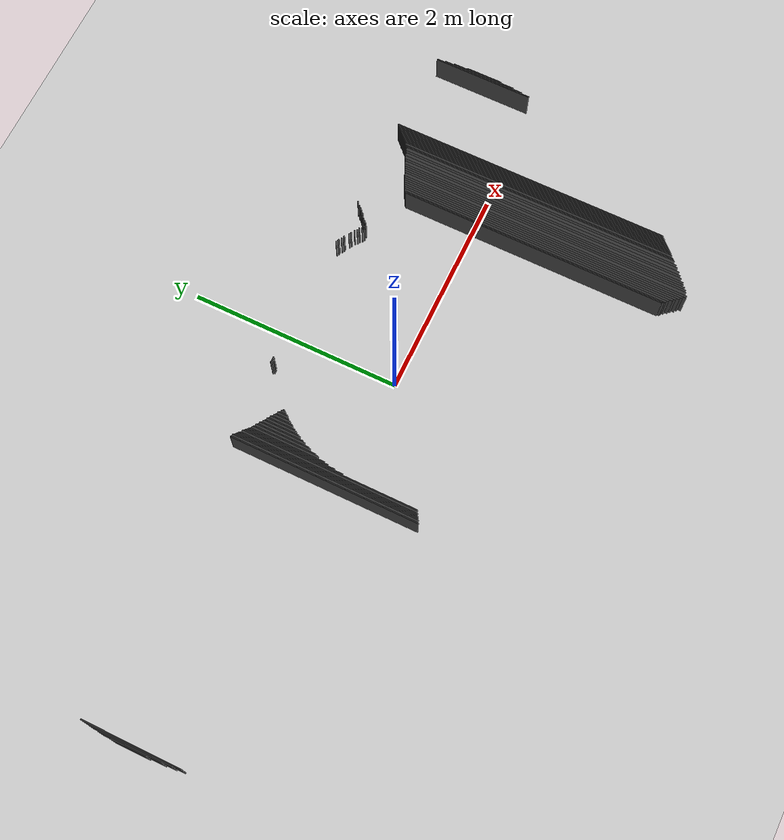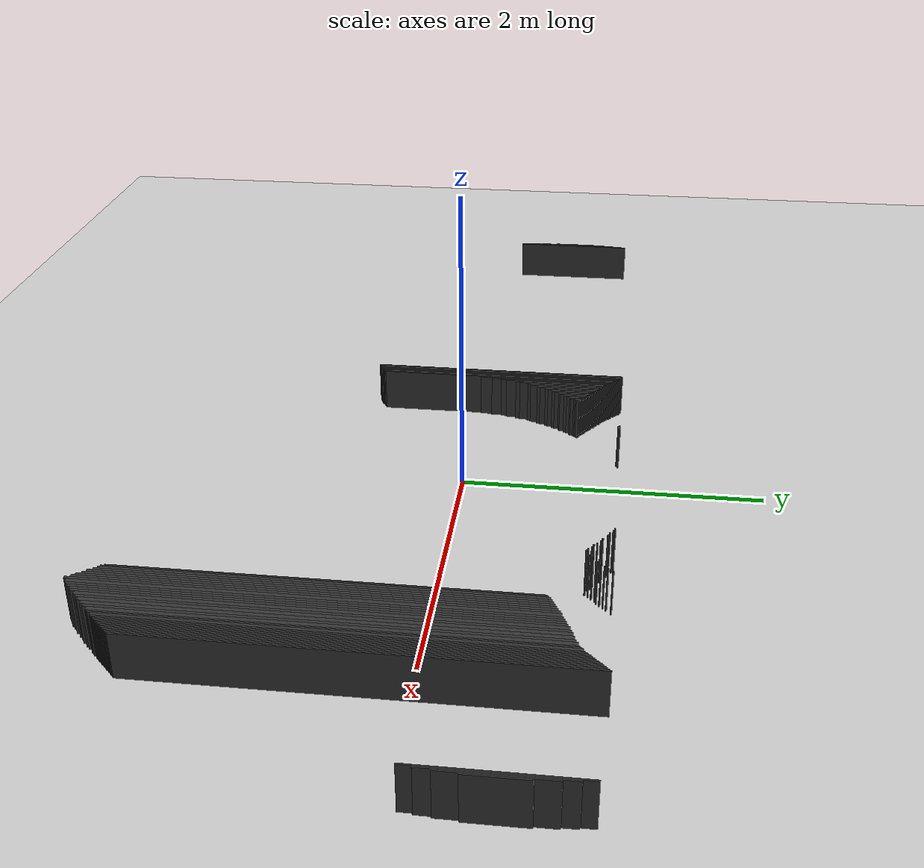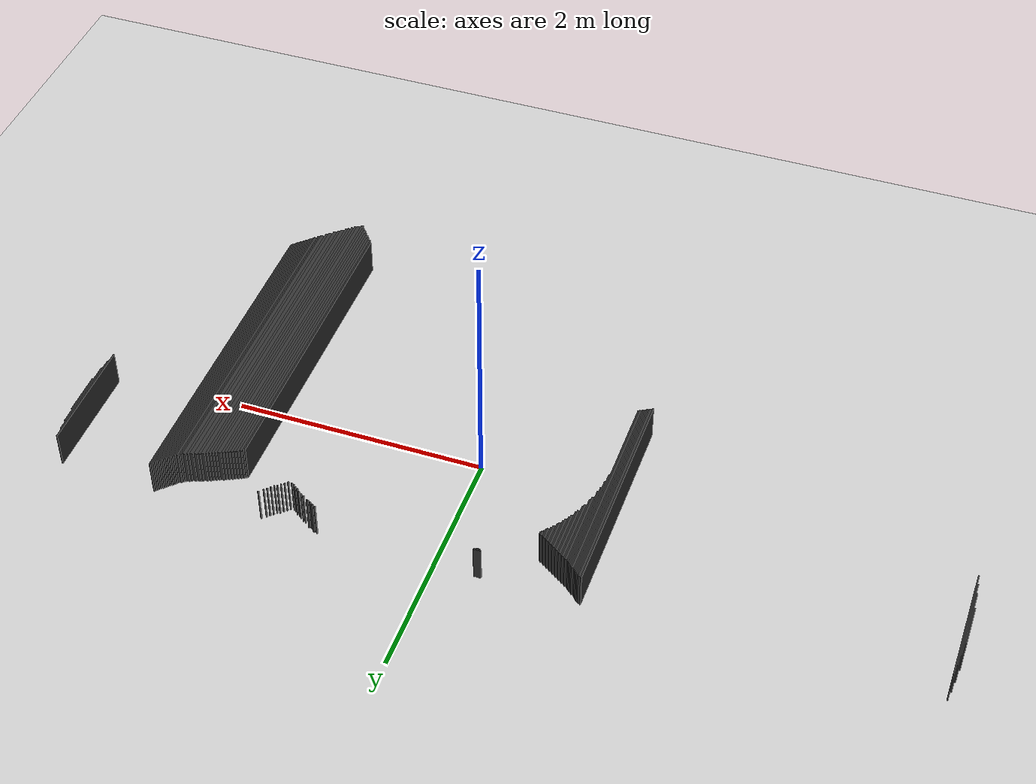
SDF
<sdf version="1.7">
 <world name="mapa_mundo">
  <model name="ground_plane">
   <static>true</static>
   <link name="link">
    <collision name="collision">
     <geometry><plane><normal>0 0 1</normal><size>10 10</size></plane></geometry>
     <surface><friction><ode><mu>100</mu><mu2>50</mu2></ode></friction></surface>
    </collision>
    <visual name="visual">
     <geometry><plane><normal>0 0 1</normal><size>10 10</size></plane></geometry>
     <material>
      <ambient>0.8 0.8 0.8 1</ambient>
      <diffuse>0.8 0.8 0.8 1</diffuse>
      <specular>0.8 0.8 0.8 1</specular>
     </material>
    </visual>
   </link>
  </model>
  <model name="wall_700">
   <static>true</static>
   <link name="link">
    <collision name="collision"><geometry><box><size>0.01 2.66 0.3</size></box></geometry></collision>
    <visual name="visual">
     <geometry><box><size>0.01 2.66 0.3</size></box></geometry>
     <material><ambient>0.2 0.2 0.2 1</ambient><diffuse>0.2 0.2 0.2 1</diffuse></material>
    </visual>
    <pose>2.255 -0.28 0.15 0 0 0</pose>
   </link>
  </model>
  <model name="wall_701">
   <static>true</static>
   <link name="link">
    <collision name="collision"><geometry><box><size>0.01 1.8 0.3</size></box></geometry></collision>
    <visual name="visual">
     <geometry><box><size>0.01 1.8 0.3</size></box></geometry>
     <material><ambient>0.2 0.2 0.2 1</ambient><diffuse>0.2 0.2 0.2 1</diffuse></material>
    </visual>
    <pose>-1.125 0.14 0.15 0 0 0</pose>
   </link>
  </model>
  <model name="wall_702">
   <static>true</static>
   <link name="link">
    <collision name="collision"><geometry><box><size>0.06 0.01 0.3</size></box></geometry></collision>
    <visual name="visual">
     <geometry><box><size>0.06 0.01 0.3</size></box></geometry>
     <material><ambient>0.2 0.2 0.2 1</ambient><diffuse>0.2 0.2 0.2 1</diffuse></material>
    </visual>
    <pose>-0.34 1.035 0.15 0 0 0</pose>
   </link>
  </model>
  <model name="wall_703">
   <static>true</static>
   <link name="link">
    <collision name="collision"><geometry><box><size>0.01 0.01 0.3</size></box></geometry></collision>
    <visual name="visual">
     <geometry><box><size>0.01 0.01 0.3</size></box></geometry>
     <material><ambient>0.2 0.2 0.2 1</ambient><diffuse>0.2 0.2 0.2 1</diffuse></material>
    </visual>
    <pose>0.925 1.035 0.15 0 0 0</pose>
   </link>
  </model>
  <model name="wall_704">
   <static>true</static>
   <link name="link">
    <collision name="collision"><geometry><box><size>0.01 0.01 0.3</size></box></geometry></collision>
    <visual name="visual">
     <geometry><box><size>0.01 0.01 0.3</size></box></geometry>
     <material><ambient>0.2 0.2 0.2 1</ambient><diffuse>0.2 0.2 0.2 1</diffuse></material>
    </visual>
    <pose>1.375 1.035 0.15 0 0 0</pose>
   </link>
  </model>
  <model name="wall_705">
   <static>true</static>
   <link name="link">
    <collision name="collision"><geometry><box><size>0.01 2.66 0.3</size></box></geometry></collision>
    <visual name="visual">
     <geometry><box><size>0.01 2.66 0.3</size></box></geometry>
     <material><ambient>0.2 0.2 0.2 1</ambient><diffuse>0.2 0.2 0.2 1</diffuse></material>
    </visual>
    <pose>2.245 -0.29 0.15 0 0 0</pose>
   </link>
  </model>
  <model name="wall_706">
   <static>true</static>
   <link name="link">
    <collision name="collision"><geometry><box><size>0.02 1.78 0.3</size></box></geometry></collision>
    <visual name="visual">
     <geometry><box><size>0.02 1.78 0.3</size></box></geometry>
     <material><ambient>0.2 0.2 0.2 1</ambient><diffuse>0.2 0.2 0.2 1</diffuse></material>
    </visual>
    <pose>-1.11 0.14 0.15 0 0 0</pose>
   </link>
  </model>
  <model name="wall_707">
   <static>true</static>
   <link name="link">
    <collision name="collision"><geometry><box><size>0.03 0.01 0.3</size></box></geometry></collision>
    <visual name="visual">
     <geometry><box><size>0.03 0.01 0.3</size></box></geometry>
     <material><ambient>0.2 0.2 0.2 1</ambient><diffuse>0.2 0.2 0.2 1</diffuse></material>
    </visual>
    <pose>-0.34500000000000003 1.025 0.15 0 0 0</pose>
   </link>
  </model>
  <model name="wall_708">
   <static>true</static>
   <link name="link">
    <collision name="collision"><geometry><box><size>0.02 0.01 0.3</size></box></geometry></collision>
    <visual name="visual">
     <geometry><box><size>0.02 0.01 0.3</size></box></geometry>
     <material><ambient>0.2 0.2 0.2 1</ambient><diffuse>0.2 0.2 0.2 1</diffuse></material>
    </visual>
    <pose>0.9500000000000001 1.025 0.15 0 0 0</pose>
   </link>
  </model>
  <model name="wall_709">
   <static>true</static>
   <link name="link">
    <collision name="collision"><geometry><box><size>0.01 2.66 0.3</size></box></geometry></collision>
    <visual name="visual">
     <geometry><box><size>0.01 2.66 0.3</size></box></geometry>
     <material><ambient>0.2 0.2 0.2 1</ambient><diffuse>0.2 0.2 0.2 1</diffuse></material>
    </visual>
    <pose>2.235 -0.3 0.15 0 0 0</pose>
   </link>
  </model>
  <model name="wall_710">
   <static>true</static>
   <link name="link">
    <collision name="collision"><geometry><box><size>0.01 1.76 0.3</size></box></geometry></collision>
    <visual name="visual">
     <geometry><box><size>0.01 1.76 0.3</size></box></geometry>
     <material><ambient>0.2 0.2 0.2 1</ambient><diffuse>0.2 0.2 0.2 1</diffuse></material>
    </visual>
    <pose>-1.095 0.14 0.15 0 0 0</pose>
   </link>
  </model>
  <model name="wall_711">
   <static>true</static>
   <link name="link">
    <collision name="collision"><geometry><box><size>0.01 2.66 0.3</size></box></geometry></collision>
    <visual name="visual">
     <geometry><box><size>0.01 2.66 0.3</size></box></geometry>
     <material><ambient>0.2 0.2 0.2 1</ambient><diffuse>0.2 0.2 0.2 1</diffuse></material>
    </visual>
    <pose>2.225 -0.31 0.15 0 0 0</pose>
   </link>
  </model>
  <model name="wall_712">
   <static>true</static>
   <link name="link">
    <collision name="collision">
     <geometry><box><size>0.01 0.9500000000000001 0.3</size></box></geometry>
    </collision>
    <visual name="visual">
     <geometry><box><size>0.01 0.9500000000000001 0.3</size></box></geometry>
     <material><ambient>0.2 0.2 0.2 1</ambient><diffuse>0.2 0.2 0.2 1</diffuse></material>
    </visual>
    <pose>3.045 0.545 0.15 0 0 0</pose>
   </link>
  </model>
  <model name="wall_713">
   <static>true</static>
   <link name="link">
    <collision name="collision"><geometry><box><size>0.01 0.93 0.3</size></box></geometry></collision>
    <visual name="visual">
     <geometry><box><size>0.01 0.93 0.3</size></box></geometry>
     <material><ambient>0.2 0.2 0.2 1</ambient><diffuse>0.2 0.2 0.2 1</diffuse></material>
    </visual>
    <pose>-3.785 0.545 0.15 0 0 0</pose>
   </link>
  </model>
  <model name="wall_714">
   <static>true</static>
   <link name="link">
    <collision name="collision"><geometry><box><size>0.01 1.75 0.3</size></box></geometry></collision>
    <visual name="visual">
     <geometry><box><size>0.01 1.75 0.3</size></box></geometry>
     <material><ambient>0.2 0.2 0.2 1</ambient><diffuse>0.2 0.2 0.2 1</diffuse></material>
    </visual>
    <pose>-1.085 0.135 0.15 0 0 0</pose>
   </link>
  </model>
  <model name="wall_715">
   <static>true</static>
   <link name="link">
    <collision name="collision"><geometry><box><size>0.01 0.01 0.3</size></box></geometry></collision>
    <visual name="visual">
     <geometry><box><size>0.01 0.01 0.3</size></box></geometry>
     <material><ambient>0.2 0.2 0.2 1</ambient><diffuse>0.2 0.2 0.2 1</diffuse></material>
    </visual>
    <pose>0.975 1.0050000000000001 0.15 0 0 0</pose>
   </link>
  </model>
  <model name="wall_716">
   <static>true</static>
   <link name="link">
    <collision name="collision"><geometry><box><size>0.01 0.01 0.3</size></box></geometry></collision>
    <visual name="visual">
     <geometry><box><size>0.01 0.01 0.3</size></box></geometry>
     <material><ambient>0.2 0.2 0.2 1</ambient><diffuse>0.2 0.2 0.2 1</diffuse></material>
    </visual>
    <pose>1.345 1.0050000000000001 0.15 0 0 0</pose>
   </link>
  </model>
  <model name="wall_717">
   <static>true</static>
   <link name="link">
    <collision name="collision"><geometry><box><size>0.01 2.66 0.3</size></box></geometry></collision>
    <visual name="visual">
     <geometry><box><size>0.01 2.66 0.3</size></box></geometry>
     <material><ambient>0.2 0.2 0.2 1</ambient><diffuse>0.2 0.2 0.2 1</diffuse></material>
    </visual>
    <pose>2.215 -0.32 0.15 0 0 0</pose>
   </link>
  </model>
  <model name="wall_718">
   <static>true</static>
   <link name="link">
    <collision name="collision"><geometry><box><size>0.01 1.73 0.3</size></box></geometry></collision>
    <visual name="visual">
     <geometry><box><size>0.01 1.73 0.3</size></box></geometry>
     <material><ambient>0.2 0.2 0.2 1</ambient><diffuse>0.2 0.2 0.2 1</diffuse></material>
    </visual>
    <pose>-1.075 0.135 0.15 0 0 0</pose>
   </link>
  </model>
  <model name="wall_719">
   <static>true</static>
   <link name="link">
    <collision name="collision"><geometry><box><size>0.02 0.01 0.3</size></box></geometry></collision>
    <visual name="visual">
     <geometry><box><size>0.02 0.01 0.3</size></box></geometry>
     <material><ambient>0.2 0.2 0.2 1</ambient><diffuse>0.2 0.2 0.2 1</diffuse></material>
    </visual>
    <pose>1.0 0.995 0.15 0 0 0</pose>
   </link>
  </model>
  <model name="wall_720">
   <static>true</static>
   <link name="link">
    <collision name="collision"><geometry><box><size>0.01 2.66 0.3</size></box></geometry></collision>
    <visual name="visual">
     <geometry><box><size>0.01 2.66 0.3</size></box></geometry>
     <material><ambient>0.2 0.2 0.2 1</ambient><diffuse>0.2 0.2 0.2 1</diffuse></material>
    </visual>
    <pose>2.205 -0.33 0.15 0 0 0</pose>
   </link>
  </model>
  <model name="wall_721">
   <static>true</static>
   <link name="link">
    <collision name="collision"><geometry><box><size>0.01 1.71 0.3</size></box></geometry></collision>
    <visual name="visual">
     <geometry><box><size>0.01 1.71 0.3</size></box></geometry>
     <material><ambient>0.2 0.2 0.2 1</ambient><diffuse>0.2 0.2 0.2 1</diffuse></material>
    </visual>
    <pose>-1.065 0.135 0.15 0 0 0</pose>
   </link>
  </model>
  <model name="wall_722">
   <static>true</static>
   <link name="link">
    <collision name="collision"><geometry><box><size>0.01 0.01 0.3</size></box></geometry></collision>
    <visual name="visual">
     <geometry><box><size>0.01 0.01 0.3</size></box></geometry>
     <material><ambient>0.2 0.2 0.2 1</ambient><diffuse>0.2 0.2 0.2 1</diffuse></material>
    </visual>
    <pose>1.325 0.985 0.15 0 0 0</pose>
   </link>
  </model>
  <model name="wall_723">
   <static>true</static>
   <link name="link">
    <collision name="collision"><geometry><box><size>0.01 2.66 0.3</size></box></geometry></collision>
    <visual name="visual">
     <geometry><box><size>0.01 2.66 0.3</size></box></geometry>
     <material><ambient>0.2 0.2 0.2 1</ambient><diffuse>0.2 0.2 0.2 1</diffuse></material>
    </visual>
    <pose>2.195 -0.34 0.15 0 0 0</pose>
   </link>
  </model>
  <model name="wall_724">
   <static>true</static>
   <link name="link">
    <collision name="collision"><geometry><box><size>0.01 1.7 0.3</size></box></geometry></collision>
    <visual name="visual">
     <geometry><box><size>0.01 1.7 0.3</size></box></geometry>
     <material><ambient>0.2 0.2 0.2 1</ambient><diffuse>0.2 0.2 0.2 1</diffuse></material>
    </visual>
    <pose>-1.055 0.13 0.15 0 0 0</pose>
   </link>
  </model>
  <model name="wall_725">
   <static>true</static>
   <link name="link">
    <collision name="collision"><geometry><box><size>0.01 2.66 0.3</size></box></geometry></collision>
    <visual name="visual">
     <geometry><box><size>0.01 2.66 0.3</size></box></geometry>
     <material><ambient>0.2 0.2 0.2 1</ambient><diffuse>0.2 0.2 0.2 1</diffuse></material>
    </visual>
    <pose>2.185 -0.35000000000000003 0.15 0 0 0</pose>
   </link>
  </model>
  <model name="wall_726">
   <static>true</static>
   <link name="link">
    <collision name="collision"><geometry><box><size>0.02 1.68 0.3</size></box></geometry></collision>
    <visual name="visual">
     <geometry><box><size>0.02 1.68 0.3</size></box></geometry>
     <material><ambient>0.2 0.2 0.2 1</ambient><diffuse>0.2 0.2 0.2 1</diffuse></material>
    </visual>
    <pose>-1.04 0.13 0.15 0 0 0</pose>
   </link>
  </model>
  <model name="wall_727">
   <static>true</static>
   <link name="link">
    <collision name="collision"><geometry><box><size>0.01 0.01 0.3</size></box></geometry></collision>
    <visual name="visual">
     <geometry><box><size>0.01 0.01 0.3</size></box></geometry>
     <material><ambient>0.2 0.2 0.2 1</ambient><diffuse>0.2 0.2 0.2 1</diffuse></material>
    </visual>
    <pose>1.045 0.965 0.15 0 0 0</pose>
   </link>
  </model>
  <model name="wall_728">
   <static>true</static>
   <link name="link">
    <collision name="collision"><geometry><box><size>0.01 0.01 0.3</size></box></geometry></collision>
    <visual name="visual">
     <geometry><box><size>0.01 0.01 0.3</size></box></geometry>
     <material><ambient>0.2 0.2 0.2 1</ambient><diffuse>0.2 0.2 0.2 1</diffuse></material>
    </visual>
    <pose>1.305 0.965 0.15 0 0 0</pose>
   </link>
  </model>
  <model name="wall_729">
   <static>true</static>
   <link name="link">
    <collision name="collision"><geometry><box><size>0.01 2.66 0.3</size></box></geometry></collision>
    <visual name="visual">
     <geometry><box><size>0.01 2.66 0.3</size></box></geometry>
     <material><ambient>0.2 0.2 0.2 1</ambient><diffuse>0.2 0.2 0.2 1</diffuse></material>
    </visual>
    <pose>2.1750000000000003 -0.36 0.15 0 0 0</pose>
   </link>
  </model>
  <model name="wall_730">
   <static>true</static>
   <link name="link">
    <collision name="collision">
     <geometry><box><size>0.01 1.6600000000000001 0.3</size></box></geometry>
    </collision>
    <visual name="visual">
     <geometry><box><size>0.01 1.6600000000000001 0.3</size></box></geometry>
     <material><ambient>0.2 0.2 0.2 1</ambient><diffuse>0.2 0.2 0.2 1</diffuse></material>
    </visual>
    <pose>-1.025 0.13 0.15 0 0 0</pose>
   </link>
  </model>
  <model name="wall_731">
   <static>true</static>
   <link name="link">
    <collision name="collision"><geometry><box><size>0.01 0.01 0.3</size></box></geometry></collision>
    <visual name="visual">
     <geometry><box><size>0.01 0.01 0.3</size></box></geometry>
     <material><ambient>0.2 0.2 0.2 1</ambient><diffuse>0.2 0.2 0.2 1</diffuse></material>
    </visual>
    <pose>1.065 0.9550000000000001 0.15 0 0 0</pose>
   </link>
  </model>
  <model name="wall_732">
   <static>true</static>
   <link name="link">
    <collision name="collision"><geometry><box><size>0.01 2.66 0.3</size></box></geometry></collision>
    <visual name="visual">
     <geometry><box><size>0.01 2.66 0.3</size></box></geometry>
     <material><ambient>0.2 0.2 0.2 1</ambient><diffuse>0.2 0.2 0.2 1</diffuse></material>
    </visual>
    <pose>2.165 -0.37 0.15 0 0 0</pose>
   </link>
  </model>
  <model name="wall_733">
   <static>true</static>
   <link name="link">
    <collision name="collision">
     <geometry><box><size>0.01 0.9400000000000001 0.3</size></box></geometry>
    </collision>
    <visual name="visual">
     <geometry><box><size>0.01 0.9400000000000001 0.3</size></box></geometry>
     <material><ambient>0.2 0.2 0.2 1</ambient><diffuse>0.2 0.2 0.2 1</diffuse></material>
    </visual>
    <pose>-1.0150000000000001 0.48 0.15 0 0 0</pose>
   </link>
  </model>
  <model name="wall_734">
   <static>true</static>
   <link name="link">
    <collision name="collision"><geometry><box><size>0.01 0.01 0.3</size></box></geometry></collision>
    <visual name="visual">
     <geometry><box><size>0.01 0.01 0.3</size></box></geometry>
     <material><ambient>0.2 0.2 0.2 1</ambient><diffuse>0.2 0.2 0.2 1</diffuse></material>
    </visual>
    <pose>1.285 0.9450000000000001 0.15 0 0 0</pose>
   </link>
  </model>
  <model name="wall_735">
   <static>true</static>
   <link name="link">
    <collision name="collision"><geometry><box><size>0.01 2.66 0.3</size></box></geometry></collision>
    <visual name="visual">
     <geometry><box><size>0.01 2.66 0.3</size></box></geometry>
     <material><ambient>0.2 0.2 0.2 1</ambient><diffuse>0.2 0.2 0.2 1</diffuse></material>
    </visual>
    <pose>2.1550000000000002 -0.38 0.15 0 0 0</pose>
   </link>
  </model>
  <model name="wall_736">
   <static>true</static>
   <link name="link">
    <collision name="collision"><geometry><box><size>0.01 0.85 0.3</size></box></geometry></collision>
    <visual name="visual">
     <geometry><box><size>0.01 0.85 0.3</size></box></geometry>
     <material><ambient>0.2 0.2 0.2 1</ambient><diffuse>0.2 0.2 0.2 1</diffuse></material>
    </visual>
    <pose>-1.0050000000000001 0.515 0.15 0 0 0</pose>
   </link>
  </model>
  <model name="wall_737">
   <static>true</static>
   <link name="link">
    <collision name="collision"><geometry><box><size>0.01 0.01 0.3</size></box></geometry></collision>
    <visual name="visual">
     <geometry><box><size>0.01 0.01 0.3</size></box></geometry>
     <material><ambient>0.2 0.2 0.2 1</ambient><diffuse>0.2 0.2 0.2 1</diffuse></material>
    </visual>
    <pose>1.095 0.935 0.15 0 0 0</pose>
   </link>
  </model>
  <model name="wall_738">
   <static>true</static>
   <link name="link">
    <collision name="collision"><geometry><box><size>0.01 0.01 0.3</size></box></geometry></collision>
    <visual name="visual">
     <geometry><box><size>0.01 0.01 0.3</size></box></geometry>
     <material><ambient>0.2 0.2 0.2 1</ambient><diffuse>0.2 0.2 0.2 1</diffuse></material>
    </visual>
    <pose>1.2650000000000001 0.935 0.15 0 0 0</pose>
   </link>
  </model>
  <model name="wall_739">
   <static>true</static>
   <link name="link">
    <collision name="collision"><geometry><box><size>0.01 2.66 0.3</size></box></geometry></collision>
    <visual name="visual">
     <geometry><box><size>0.01 2.66 0.3</size></box></geometry>
     <material><ambient>0.2 0.2 0.2 1</ambient><diffuse>0.2 0.2 0.2 1</diffuse></material>
    </visual>
    <pose>2.145 -0.39 0.15 0 0 0</pose>
   </link>
  </model>
  <model name="wall_740">
   <static>true</static>
   <link name="link">
    <collision name="collision"><geometry><box><size>0.01 0.79 0.3</size></box></geometry></collision>
    <visual name="visual">
     <geometry><box><size>0.01 0.79 0.3</size></box></geometry>
     <material><ambient>0.2 0.2 0.2 1</ambient><diffuse>0.2 0.2 0.2 1</diffuse></material>
    </visual>
    <pose>3.055 0.545 0.15 0 0 0</pose>
   </link>
  </model>
  <model name="wall_741">
   <static>true</static>
   <link name="link">
    <collision name="collision"><geometry><box><size>0.01 0.77 0.3</size></box></geometry></collision>
    <visual name="visual">
     <geometry><box><size>0.01 0.77 0.3</size></box></geometry>
     <material><ambient>0.2 0.2 0.2 1</ambient><diffuse>0.2 0.2 0.2 1</diffuse></material>
    </visual>
    <pose>-3.795 0.545 0.15 0 0 0</pose>
   </link>
  </model>
  <model name="wall_742">
   <static>true</static>
   <link name="link">
    <collision name="collision"><geometry><box><size>0.01 0.77 0.3</size></box></geometry></collision>
    <visual name="visual">
     <geometry><box><size>0.01 0.77 0.3</size></box></geometry>
     <material><ambient>0.2 0.2 0.2 1</ambient><diffuse>0.2 0.2 0.2 1</diffuse></material>
    </visual>
    <pose>-0.995 0.545 0.15 0 0 0</pose>
   </link>
  </model>
  <model name="wall_743">
   <static>true</static>
   <link name="link">
    <collision name="collision"><geometry><box><size>0.01 2.66 0.3</size></box></geometry></collision>
    <visual name="visual">
     <geometry><box><size>0.01 2.66 0.3</size></box></geometry>
     <material><ambient>0.2 0.2 0.2 1</ambient><diffuse>0.2 0.2 0.2 1</diffuse></material>
    </visual>
    <pose>2.1350000000000002 -0.4 0.15 0 0 0</pose>
   </link>
  </model>
  <model name="wall_744">
   <static>true</static>
   <link name="link">
    <collision name="collision"><geometry><box><size>0.01 0.72 0.3</size></box></geometry></collision>
    <visual name="visual">
     <geometry><box><size>0.01 0.72 0.3</size></box></geometry>
     <material><ambient>0.2 0.2 0.2 1</ambient><diffuse>0.2 0.2 0.2 1</diffuse></material>
    </visual>
    <pose>-0.985 0.56 0.15 0 0 0</pose>
   </link>
  </model>
  <model name="wall_745">
   <static>true</static>
   <link name="link">
    <collision name="collision"><geometry><box><size>0.01 0.01 0.3</size></box></geometry></collision>
    <visual name="visual">
     <geometry><box><size>0.01 0.01 0.3</size></box></geometry>
     <material><ambient>0.2 0.2 0.2 1</ambient><diffuse>0.2 0.2 0.2 1</diffuse></material>
    </visual>
    <pose>1.115 0.915 0.15 0 0 0</pose>
   </link>
  </model>
  <model name="wall_746">
   <static>true</static>
   <link name="link">
    <collision name="collision"><geometry><box><size>0.01 0.01 0.3</size></box></geometry></collision>
    <visual name="visual">
     <geometry><box><size>0.01 0.01 0.3</size></box></geometry>
     <material><ambient>0.2 0.2 0.2 1</ambient><diffuse>0.2 0.2 0.2 1</diffuse></material>
    </visual>
    <pose>1.245 0.915 0.15 0 0 0</pose>
   </link>
  </model>
  <model name="wall_747">
   <static>true</static>
   <link name="link">
    <collision name="collision"><geometry><box><size>0.01 2.66 0.3</size></box></geometry></collision>
    <visual name="visual">
     <geometry><box><size>0.01 2.66 0.3</size></box></geometry>
     <material><ambient>0.2 0.2 0.2 1</ambient><diffuse>0.2 0.2 0.2 1</diffuse></material>
    </visual>
    <pose>2.125 -0.41000000000000003 0.15 0 0 0</pose>
   </link>
  </model>
  <model name="wall_748">
   <static>true</static>
   <link name="link">
    <collision name="collision"><geometry><box><size>0.02 0.64 0.3</size></box></geometry></collision>
    <visual name="visual">
     <geometry><box><size>0.02 0.64 0.3</size></box></geometry>
     <material><ambient>0.2 0.2 0.2 1</ambient><diffuse>0.2 0.2 0.2 1</diffuse></material>
    </visual>
    <pose>-0.97 0.59 0.15 0 0 0</pose>
   </link>
  </model>
  <model name="wall_749">
   <static>true</static>
   <link name="link">
    <collision name="collision"><geometry><box><size>0.01 0.01 0.3</size></box></geometry></collision>
    <visual name="visual">
     <geometry><box><size>0.01 0.01 0.3</size></box></geometry>
     <material><ambient>0.2 0.2 0.2 1</ambient><diffuse>0.2 0.2 0.2 1</diffuse></material>
    </visual>
    <pose>1.135 0.905 0.15 0 0 0</pose>
   </link>
  </model>
  <model name="wall_750">
   <static>true</static>
   <link name="link">
    <collision name="collision"><geometry><box><size>0.01 2.66 0.3</size></box></geometry></collision>
    <visual name="visual">
     <geometry><box><size>0.01 2.66 0.3</size></box></geometry>
     <material><ambient>0.2 0.2 0.2 1</ambient><diffuse>0.2 0.2 0.2 1</diffuse></material>
    </visual>
    <pose>2.115 -0.42 0.15 0 0 0</pose>
   </link>
  </model>
  <model name="wall_751">
   <static>true</static>
   <link name="link">
    <collision name="collision"><geometry><box><size>0.01 0.6 0.3</size></box></geometry></collision>
    <visual name="visual">
     <geometry><box><size>0.01 0.6 0.3</size></box></geometry>
     <material><ambient>0.2 0.2 0.2 1</ambient><diffuse>0.2 0.2 0.2 1</diffuse></material>
    </visual>
    <pose>-0.9550000000000001 0.6 0.15 0 0 0</pose>
   </link>
  </model>
  <model name="wall_752">
   <static>true</static>
   <link name="link">
    <collision name="collision"><geometry><box><size>0.01 0.01 0.3</size></box></geometry></collision>
    <visual name="visual">
     <geometry><box><size>0.01 0.01 0.3</size></box></geometry>
     <material><ambient>0.2 0.2 0.2 1</ambient><diffuse>0.2 0.2 0.2 1</diffuse></material>
    </visual>
    <pose>1.225 0.895 0.15 0 0 0</pose>
   </link>
  </model>
  <model name="wall_753">
   <static>true</static>
   <link name="link">
    <collision name="collision"><geometry><box><size>0.02 2.66 0.3</size></box></geometry></collision>
    <visual name="visual">
     <geometry><box><size>0.02 2.66 0.3</size></box></geometry>
     <material><ambient>0.2 0.2 0.2 1</ambient><diffuse>0.2 0.2 0.2 1</diffuse></material>
    </visual>
    <pose>2.1 -0.43 0.15 0 0 0</pose>
   </link>
  </model>
  <model name="wall_754">
   <static>true</static>
   <link name="link">
    <collision name="collision"><geometry><box><size>0.02 0.53 0.3</size></box></geometry></collision>
    <visual name="visual">
     <geometry><box><size>0.02 0.53 0.3</size></box></geometry>
     <material><ambient>0.2 0.2 0.2 1</ambient><diffuse>0.2 0.2 0.2 1</diffuse></material>
    </visual>
    <pose>-0.9400000000000001 0.625 0.15 0 0 0</pose>
   </link>
  </model>
  <model name="wall_755">
   <static>true</static>
   <link name="link">
    <collision name="collision"><geometry><box><size>0.01 0.01 0.3</size></box></geometry></collision>
    <visual name="visual">
     <geometry><box><size>0.01 0.01 0.3</size></box></geometry>
     <material><ambient>0.2 0.2 0.2 1</ambient><diffuse>0.2 0.2 0.2 1</diffuse></material>
    </visual>
    <pose>1.155 0.885 0.15 0 0 0</pose>
   </link>
  </model>
  <model name="wall_756">
   <static>true</static>
   <link name="link">
    <collision name="collision"><geometry><box><size>0.01 2.67 0.3</size></box></geometry></collision>
    <visual name="visual">
     <geometry><box><size>0.01 2.67 0.3</size></box></geometry>
     <material><ambient>0.2 0.2 0.2 1</ambient><diffuse>0.2 0.2 0.2 1</diffuse></material>
    </visual>
    <pose>2.085 -0.445 0.15 0 0 0</pose>
   </link>
  </model>
  <model name="wall_757">
   <static>true</static>
   <link name="link">
    <collision name="collision"><geometry><box><size>0.01 0.5 0.3</size></box></geometry></collision>
    <visual name="visual">
     <geometry><box><size>0.01 0.5 0.3</size></box></geometry>
     <material><ambient>0.2 0.2 0.2 1</ambient><diffuse>0.2 0.2 0.2 1</diffuse></material>
    </visual>
    <pose>-0.925 0.63 0.15 0 0 0</pose>
   </link>
  </model>
  <model name="wall_758">
   <static>true</static>
   <link name="link">
    <collision name="collision"><geometry><box><size>0.01 0.01 0.3</size></box></geometry></collision>
    <visual name="visual">
     <geometry><box><size>0.01 0.01 0.3</size></box></geometry>
     <material><ambient>0.2 0.2 0.2 1</ambient><diffuse>0.2 0.2 0.2 1</diffuse></material>
    </visual>
    <pose>1.175 0.875 0.15 0 0 0</pose>
   </link>
  </model>
  <model name="wall_759">
   <static>true</static>
   <link name="link">
    <collision name="collision"><geometry><box><size>0.01 0.01 0.3</size></box></geometry></collision>
    <visual name="visual">
     <geometry><box><size>0.01 0.01 0.3</size></box></geometry>
     <material><ambient>0.2 0.2 0.2 1</ambient><diffuse>0.2 0.2 0.2 1</diffuse></material>
    </visual>
    <pose>1.205 0.875 0.15 0 0 0</pose>
   </link>
  </model>
  <model name="wall_760">
   <static>true</static>
   <link name="link">
    <collision name="collision"><geometry><box><size>0.01 2.67 0.3</size></box></geometry></collision>
    <visual name="visual">
     <geometry><box><size>0.01 2.67 0.3</size></box></geometry>
     <material><ambient>0.2 0.2 0.2 1</ambient><diffuse>0.2 0.2 0.2 1</diffuse></material>
    </visual>
    <pose>2.075 -0.455 0.15 0 0 0</pose>
   </link>
  </model>
  <model name="wall_761">
   <static>true</static>
   <link name="link">
    <collision name="collision"><geometry><box><size>0.02 0.44 0.3</size></box></geometry></collision>
    <visual name="visual">
     <geometry><box><size>0.02 0.44 0.3</size></box></geometry>
     <material><ambient>0.2 0.2 0.2 1</ambient><diffuse>0.2 0.2 0.2 1</diffuse></material>
    </visual>
    <pose>-0.91 0.65 0.15 0 0 0</pose>
   </link>
  </model>
  <model name="wall_762">
   <static>true</static>
   <link name="link">
    <collision name="collision"><geometry><box><size>0.03 2.67 0.3</size></box></geometry></collision>
    <visual name="visual">
     <geometry><box><size>0.03 2.67 0.3</size></box></geometry>
     <material><ambient>0.2 0.2 0.2 1</ambient><diffuse>0.2 0.2 0.2 1</diffuse></material>
    </visual>
    <pose>2.055 -0.465 0.15 0 0 0</pose>
   </link>
  </model>
  <model name="wall_763">
   <static>true</static>
   <link name="link">
    <collision name="collision">
     <geometry><box><size>0.01 0.41000000000000003 0.3</size></box></geometry>
    </collision>
    <visual name="visual">
     <geometry><box><size>0.01 0.41000000000000003 0.3</size></box></geometry>
     <material><ambient>0.2 0.2 0.2 1</ambient><diffuse>0.2 0.2 0.2 1</diffuse></material>
    </visual>
    <pose>-0.895 0.655 0.15 0 0 0</pose>
   </link>
  </model>
  <model name="wall_764">
   <static>true</static>
   <link name="link">
    <collision name="collision"><geometry><box><size>0.02 2.69 0.3</size></box></geometry></collision>
    <visual name="visual">
     <geometry><box><size>0.02 2.69 0.3</size></box></geometry>
     <material><ambient>0.2 0.2 0.2 1</ambient><diffuse>0.2 0.2 0.2 1</diffuse></material>
    </visual>
    <pose>2.0300000000000002 -0.485 0.15 0 0 0</pose>
   </link>
  </model>
  <model name="wall_765">
   <static>true</static>
   <link name="link">
    <collision name="collision"><geometry><box><size>0.02 0.36 0.3</size></box></geometry></collision>
    <visual name="visual">
     <geometry><box><size>0.02 0.36 0.3</size></box></geometry>
     <material><ambient>0.2 0.2 0.2 1</ambient><diffuse>0.2 0.2 0.2 1</diffuse></material>
    </visual>
    <pose>-0.88 0.67 0.15 0 0 0</pose>
   </link>
  </model>
  <model name="wall_766">
   <static>true</static>
   <link name="link">
    <collision name="collision"><geometry><box><size>0.03 2.7 0.3</size></box></geometry></collision>
    <visual name="visual">
     <geometry><box><size>0.03 2.7 0.3</size></box></geometry>
     <material><ambient>0.2 0.2 0.2 1</ambient><diffuse>0.2 0.2 0.2 1</diffuse></material>
    </visual>
    <pose>2.005 -0.5 0.15 0 0 0</pose>
   </link>
  </model>
  <model name="wall_767">
   <static>true</static>
   <link name="link">
    <collision name="collision"><geometry><box><size>0.01 0.61 0.3</size></box></geometry></collision>
    <visual name="visual">
     <geometry><box><size>0.01 0.61 0.3</size></box></geometry>
     <material><ambient>0.2 0.2 0.2 1</ambient><diffuse>0.2 0.2 0.2 1</diffuse></material>
    </visual>
    <pose>3.065 0.545 0.15 0 0 0</pose>
   </link>
  </model>
  <model name="wall_768">
   <static>true</static>
   <link name="link">
    <collision name="collision"><geometry><box><size>0.01 0.59 0.3</size></box></geometry></collision>
    <visual name="visual">
     <geometry><box><size>0.01 0.59 0.3</size></box></geometry>
     <material><ambient>0.2 0.2 0.2 1</ambient><diffuse>0.2 0.2 0.2 1</diffuse></material>
    </visual>
    <pose>-3.805 0.545 0.15 0 0 0</pose>
   </link>
  </model>
  <model name="wall_769">
   <static>true</static>
   <link name="link">
    <collision name="collision"><geometry><box><size>0.01 0.33 0.3</size></box></geometry></collision>
    <visual name="visual">
     <geometry><box><size>0.01 0.33 0.3</size></box></geometry>
     <material><ambient>0.2 0.2 0.2 1</ambient><diffuse>0.2 0.2 0.2 1</diffuse></material>
    </visual>
    <pose>-0.865 0.675 0.15 0 0 0</pose>
   </link>
  </model>
  <model name="wall_770">
   <static>true</static>
   <link name="link">
    <collision name="collision"><geometry><box><size>0.03 2.72 0.3</size></box></geometry></collision>
    <visual name="visual">
     <geometry><box><size>0.03 2.72 0.3</size></box></geometry>
     <material><ambient>0.2 0.2 0.2 1</ambient><diffuse>0.2 0.2 0.2 1</diffuse></material>
    </visual>
    <pose>1.975 -0.52 0.15 0 0 0</pose>
   </link>
  </model>
  <model name="wall_771">
   <static>true</static>
   <link name="link">
    <collision name="collision"><geometry><box><size>0.02 0.29 0.3</size></box></geometry></collision>
    <visual name="visual">
     <geometry><box><size>0.02 0.29 0.3</size></box></geometry>
     <material><ambient>0.2 0.2 0.2 1</ambient><diffuse>0.2 0.2 0.2 1</diffuse></material>
    </visual>
    <pose>-0.85 0.685 0.15 0 0 0</pose>
   </link>
  </model>
  <model name="wall_772">
   <static>true</static>
   <link name="link">
    <collision name="collision"><geometry><box><size>0.02 2.73 0.3</size></box></geometry></collision>
    <visual name="visual">
     <geometry><box><size>0.02 2.73 0.3</size></box></geometry>
     <material><ambient>0.2 0.2 0.2 1</ambient><diffuse>0.2 0.2 0.2 1</diffuse></material>
    </visual>
    <pose>1.95 -0.535 0.15 0 0 0</pose>
   </link>
  </model>
  <model name="wall_773">
   <static>true</static>
   <link name="link">
    <collision name="collision"><geometry><box><size>0.01 0.26 0.3</size></box></geometry></collision>
    <visual name="visual">
     <geometry><box><size>0.01 0.26 0.3</size></box></geometry>
     <material><ambient>0.2 0.2 0.2 1</ambient><diffuse>0.2 0.2 0.2 1</diffuse></material>
    </visual>
    <pose>-0.835 0.6900000000000001 0.15 0 0 0</pose>
   </link>
  </model>
  <model name="wall_774">
   <static>true</static>
   <link name="link">
    <collision name="collision"><geometry><box><size>0.03 2.74 0.3</size></box></geometry></collision>
    <visual name="visual">
     <geometry><box><size>0.03 2.74 0.3</size></box></geometry>
     <material><ambient>0.2 0.2 0.2 1</ambient><diffuse>0.2 0.2 0.2 1</diffuse></material>
    </visual>
    <pose>1.925 -0.55 0.15 0 0 0</pose>
   </link>
  </model>
  <model name="wall_775">
   <static>true</static>
   <link name="link">
    <collision name="collision"><geometry><box><size>0.02 0.22 0.3</size></box></geometry></collision>
    <visual name="visual">
     <geometry><box><size>0.02 0.22 0.3</size></box></geometry>
     <material><ambient>0.2 0.2 0.2 1</ambient><diffuse>0.2 0.2 0.2 1</diffuse></material>
    </visual>
    <pose>-0.8200000000000001 0.7000000000000001 0.15 0 0 0</pose>
   </link>
  </model>
  <model name="wall_776">
   <static>true</static>
   <link name="link">
    <collision name="collision">
     <geometry><box><size>0.02 2.7600000000000002 0.3</size></box></geometry>
    </collision>
    <visual name="visual">
     <geometry><box><size>0.02 2.7600000000000002 0.3</size></box></geometry>
     <material><ambient>0.2 0.2 0.2 1</ambient><diffuse>0.2 0.2 0.2 1</diffuse></material>
    </visual>
    <pose>1.9000000000000001 -0.5700000000000001 0.15 0 0 0</pose>
   </link>
  </model>
  <model name="wall_777">
   <static>true</static>
   <link name="link">
    <collision name="collision"><geometry><box><size>0.01 0.2 0.3</size></box></geometry></collision>
    <visual name="visual">
     <geometry><box><size>0.01 0.2 0.3</size></box></geometry>
     <material><ambient>0.2 0.2 0.2 1</ambient><diffuse>0.2 0.2 0.2 1</diffuse></material>
    </visual>
    <pose>-0.805 0.7000000000000001 0.15 0 0 0</pose>
   </link>
  </model>
  <model name="wall_778">
   <static>true</static>
   <link name="link">
    <collision name="collision">
     <geometry><box><size>0.02 2.7600000000000002 0.3</size></box></geometry>
    </collision>
    <visual name="visual">
     <geometry><box><size>0.02 2.7600000000000002 0.3</size></box></geometry>
     <material><ambient>0.2 0.2 0.2 1</ambient><diffuse>0.2 0.2 0.2 1</diffuse></material>
    </visual>
    <pose>1.8800000000000001 -0.58 0.15 0 0 0</pose>
   </link>
  </model>
  <model name="wall_779">
   <static>true</static>
   <link name="link">
    <collision name="collision"><geometry><box><size>0.02 0.16 0.3</size></box></geometry></collision>
    <visual name="visual">
     <geometry><box><size>0.02 0.16 0.3</size></box></geometry>
     <material><ambient>0.2 0.2 0.2 1</ambient><diffuse>0.2 0.2 0.2 1</diffuse></material>
    </visual>
    <pose>-0.79 0.71 0.15 0 0 0</pose>
   </link>
  </model>
  <model name="wall_780">
   <static>true</static>
   <link name="link">
    <collision name="collision"><geometry><box><size>0.02 2.77 0.3</size></box></geometry></collision>
    <visual name="visual">
     <geometry><box><size>0.02 2.77 0.3</size></box></geometry>
     <material><ambient>0.2 0.2 0.2 1</ambient><diffuse>0.2 0.2 0.2 1</diffuse></material>
    </visual>
    <pose>1.86 -0.595 0.15 0 0 0</pose>
   </link>
  </model>
  <model name="wall_781">
   <static>true</static>
   <link name="link">
    <collision name="collision"><geometry><box><size>0.01 0.13 0.3</size></box></geometry></collision>
    <visual name="visual">
     <geometry><box><size>0.01 0.13 0.3</size></box></geometry>
     <material><ambient>0.2 0.2 0.2 1</ambient><diffuse>0.2 0.2 0.2 1</diffuse></material>
    </visual>
    <pose>-0.775 0.715 0.15 0 0 0</pose>
   </link>
  </model>
  <model name="wall_782">
   <static>true</static>
   <link name="link">
    <collision name="collision">
     <geometry><box><size>0.02 2.7800000000000002 0.3</size></box></geometry>
    </collision>
    <visual name="visual">
     <geometry><box><size>0.02 2.7800000000000002 0.3</size></box></geometry>
     <material><ambient>0.2 0.2 0.2 1</ambient><diffuse>0.2 0.2 0.2 1</diffuse></material>
    </visual>
    <pose>1.84 -0.61 0.15 0 0 0</pose>
   </link>
  </model>
  <model name="wall_783">
   <static>true</static>
   <link name="link">
    <collision name="collision"><geometry><box><size>0.02 0.1 0.3</size></box></geometry></collision>
    <visual name="visual">
     <geometry><box><size>0.02 0.1 0.3</size></box></geometry>
     <material><ambient>0.2 0.2 0.2 1</ambient><diffuse>0.2 0.2 0.2 1</diffuse></material>
    </visual>
    <pose>-0.76 0.72 0.15 0 0 0</pose>
   </link>
  </model>
  <model name="wall_784">
   <static>true</static>
   <link name="link">
    <collision name="collision">
     <geometry><box><size>0.03 2.7800000000000002 0.3</size></box></geometry>
    </collision>
    <visual name="visual">
     <geometry><box><size>0.03 2.7800000000000002 0.3</size></box></geometry>
     <material><ambient>0.2 0.2 0.2 1</ambient><diffuse>0.2 0.2 0.2 1</diffuse></material>
    </visual>
    <pose>1.815 -0.62 0.15 0 0 0</pose>
   </link>
  </model>
  <model name="wall_785">
   <static>true</static>
   <link name="link">
    <collision name="collision"><geometry><box><size>0.01 0.08 0.3</size></box></geometry></collision>
    <visual name="visual">
     <geometry><box><size>0.01 0.08 0.3</size></box></geometry>
     <material><ambient>0.2 0.2 0.2 1</ambient><diffuse>0.2 0.2 0.2 1</diffuse></material>
    </visual>
    <pose>-0.745 0.72 0.15 0 0 0</pose>
   </link>
  </model>
  <model name="wall_786">
   <static>true</static>
   <link name="link">
    <collision name="collision"><geometry><box><size>0.02 2.79 0.3</size></box></geometry></collision>
    <visual name="visual">
     <geometry><box><size>0.02 2.79 0.3</size></box></geometry>
     <material><ambient>0.2 0.2 0.2 1</ambient><diffuse>0.2 0.2 0.2 1</diffuse></material>
    </visual>
    <pose>1.79 -0.635 0.15 0 0 0</pose>
   </link>
  </model>
  <model name="wall_787">
   <static>true</static>
   <link name="link">
    <collision name="collision"><geometry><box><size>0.02 0.04 0.3</size></box></geometry></collision>
    <visual name="visual">
     <geometry><box><size>0.02 0.04 0.3</size></box></geometry>
     <material><ambient>0.2 0.2 0.2 1</ambient><diffuse>0.2 0.2 0.2 1</diffuse></material>
    </visual>
    <pose>-0.73 0.73 0.15 0 0 0</pose>
   </link>
  </model>
  <model name="wall_788">
   <static>true</static>
   <link name="link">
    <collision name="collision"><geometry><box><size>0.02 2.75 0.3</size></box></geometry></collision>
    <visual name="visual">
     <geometry><box><size>0.02 2.75 0.3</size></box></geometry>
     <material><ambient>0.2 0.2 0.2 1</ambient><diffuse>0.2 0.2 0.2 1</diffuse></material>
    </visual>
    <pose>1.77 -0.625 0.15 0 0 0</pose>
   </link>
  </model>
  <model name="wall_789">
   <static>true</static>
   <link name="link">
    <collision name="collision"><geometry><box><size>0.01 0.02 0.3</size></box></geometry></collision>
    <visual name="visual">
     <geometry><box><size>0.01 0.02 0.3</size></box></geometry>
     <material><ambient>0.2 0.2 0.2 1</ambient><diffuse>0.2 0.2 0.2 1</diffuse></material>
    </visual>
    <pose>-0.715 0.73 0.15 0 0 0</pose>
   </link>
  </model>
  <model name="wall_790">
   <static>true</static>
   <link name="link">
    <collision name="collision"><geometry><box><size>0.02 2.72 0.3</size></box></geometry></collision>
    <visual name="visual">
     <geometry><box><size>0.02 2.72 0.3</size></box></geometry>
     <material><ambient>0.2 0.2 0.2 1</ambient><diffuse>0.2 0.2 0.2 1</diffuse></material>
    </visual>
    <pose>1.75 -0.62 0.15 0 0 0</pose>
   </link>
  </model>
  <model name="wall_791">
   <static>true</static>
   <link name="link">
    <collision name="collision"><geometry><box><size>0.02 2.68 0.3</size></box></geometry></collision>
    <visual name="visual">
     <geometry><box><size>0.02 2.68 0.3</size></box></geometry>
     <material><ambient>0.2 0.2 0.2 1</ambient><diffuse>0.2 0.2 0.2 1</diffuse></material>
    </visual>
    <pose>1.73 -0.61 0.15 0 0 0</pose>
   </link>
  </model>
  <model name="wall_792">
   <static>true</static>
   <link name="link">
    <collision name="collision"><geometry><box><size>0.01 0.33 0.3</size></box></geometry></collision>
    <visual name="visual">
     <geometry><box><size>0.01 0.33 0.3</size></box></geometry>
     <material><ambient>0.2 0.2 0.2 1</ambient><diffuse>0.2 0.2 0.2 1</diffuse></material>
    </visual>
    <pose>-3.815 0.555 0.15 0 0 0</pose>
   </link>
  </model>
  <model name="wall_793">
   <static>true</static>
   <link name="link">
    <collision name="collision"><geometry><box><size>0.02 2.65 0.3</size></box></geometry></collision>
    <visual name="visual">
     <geometry><box><size>0.02 2.65 0.3</size></box></geometry>
     <material><ambient>0.2 0.2 0.2 1</ambient><diffuse>0.2 0.2 0.2 1</diffuse></material>
    </visual>
    <pose>1.71 -0.605 0.15 0 0 0</pose>
   </link>
  </model>
  <model name="wall_794">
   <static>true</static>
   <link name="link">
    <collision name="collision">
     <geometry><box><size>0.01 0.35000000000000003 0.3</size></box></geometry>
    </collision>
    <visual name="visual">
     <geometry><box><size>0.01 0.35000000000000003 0.3</size></box></geometry>
     <material><ambient>0.2 0.2 0.2 1</ambient><diffuse>0.2 0.2 0.2 1</diffuse></material>
    </visual>
    <pose>3.075 0.545 0.15 0 0 0</pose>
   </link>
  </model>
  <model name="wall_795">
   <static>true</static>
   <link name="link">
    <collision name="collision"><geometry><box><size>0.01 0.01 0.3</size></box></geometry></collision>
    <visual name="visual">
     <geometry><box><size>0.01 0.01 0.3</size></box></geometry>
     <material><ambient>0.2 0.2 0.2 1</ambient><diffuse>0.2 0.2 0.2 1</diffuse></material>
    </visual>
    <pose>-0.735 0.705 0.15 0 0 0</pose>
   </link>
  </model>
  <model name="wall_796">
   <static>true</static>
   <link name="link">
    <collision name="collision"><geometry><box><size>0.02 2.61 0.3</size></box></geometry></collision>
    <visual name="visual">
     <geometry><box><size>0.02 2.61 0.3</size></box></geometry>
     <material><ambient>0.2 0.2 0.2 1</ambient><diffuse>0.2 0.2 0.2 1</diffuse></material>
    </visual>
    <pose>1.69 -0.595 0.15 0 0 0</pose>
   </link>
  </model>
  <model name="wall_797">
   <static>true</static>
   <link name="link">
    <collision name="collision"><geometry><box><size>0.02 2.58 0.3</size></box></geometry></collision>
    <visual name="visual">
     <geometry><box><size>0.02 2.58 0.3</size></box></geometry>
     <material><ambient>0.2 0.2 0.2 1</ambient><diffuse>0.2 0.2 0.2 1</diffuse></material>
    </visual>
    <pose>1.67 -0.59 0.15 0 0 0</pose>
   </link>
  </model>
  <model name="wall_798">
   <static>true</static>
   <link name="link">
    <collision name="collision"><geometry><box><size>0.01 2.56 0.3</size></box></geometry></collision>
    <visual name="visual">
     <geometry><box><size>0.01 2.56 0.3</size></box></geometry>
     <material><ambient>0.2 0.2 0.2 1</ambient><diffuse>0.2 0.2 0.2 1</diffuse></material>
    </visual>
    <pose>1.655 -0.59 0.15 0 0 0</pose>
   </link>
  </model>
  <model name="wall_799">
   <static>true</static>
   <link name="link">
    <collision name="collision">
     <geometry><box><size>0.01 2.5300000000000002 0.3</size></box></geometry>
    </collision>
    <visual name="visual">
     <geometry><box><size>0.01 2.5300000000000002 0.3</size></box></geometry>
     <material><ambient>0.2 0.2 0.2 1</ambient><diffuse>0.2 0.2 0.2 1</diffuse></material>
    </visual>
    <pose>1.645 -0.585 0.15 0 0 0</pose>
   </link>
  </model>
 </world>
</sdf>
